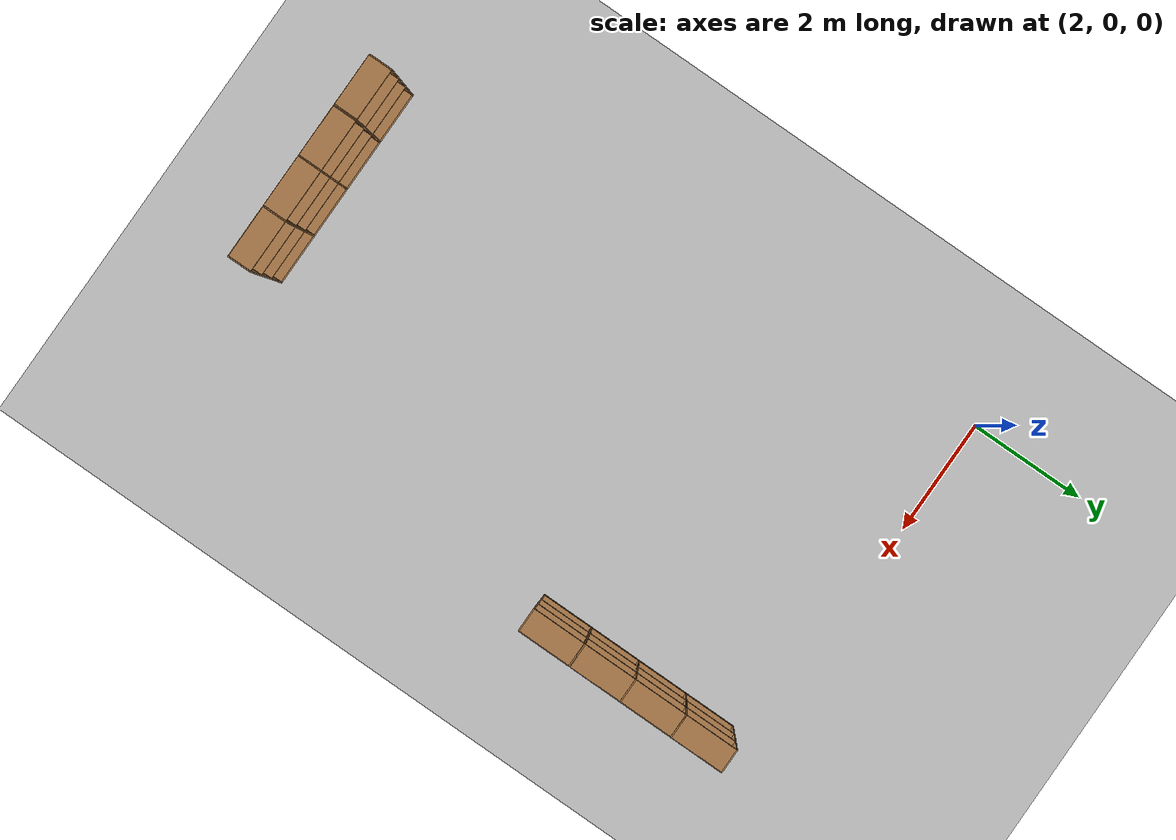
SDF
<sdf version="1.6">
 <world name="default">
  <model name="ground_plane">
   <static>1</static>
   <link name="link">
    <collision name="collision">
     <geometry><plane><normal>0 0 1</normal><size>100 100</size></plane></geometry>
     <surface><friction><ode><mu>100</mu><mu2>50</mu2></ode></friction></surface>
    </collision>
    <visual name="visual">
     <cast_shadows>0</cast_shadows>
     <geometry><plane><normal>0 0 1</normal><size>100 100</size></plane></geometry>
     <material>
      <script><uri>file://media/materials/scripts/gazebo.material</uri><name>Gazebo/Grey</name></script>
     </material>
    </visual>
   </link>
  </model>
  <model name="Bookself-4_clone_0_clone_5_clone_0">
   <model name="Bookself-3">
    <model name="bookshelf_0">
     <static>1</static>
     <link name="link">
      <inertial><mass>1</mass></inertial>
      <collision name="back">
       <pose>0 0.005 0.6 0 -0 0</pose>
       <geometry><box><size>0.9 0.01 1.2</size></box></geometry>
      </collision>
      <visual name="visual1">
       <pose>0 0.005 0.6 0 -0 0</pose>
       <geometry><box><size>0.9 0.01 1.2</size></box></geometry>
       <material>
        <script><uri>file://media/materials/scripts/gazebo.material</uri><name>Gazebo/Wood</name></script>
       </material>
      </visual>
      <collision name="left_side">
       <pose>0.45 -0.195 0.6 0 -0 0</pose>
       <geometry><box><size>0.02 0.4 1.2</size></box></geometry>
      </collision>
      <visual name="visual2">
       <pose>0.45 -0.195 0.6 0 -0 0</pose>
       <geometry><box><size>0.02 0.4 1.2</size></box></geometry>
       <material>
        <script><uri>file://media/materials/scripts/gazebo.material</uri><name>Gazebo/Wood</name></script>
       </material>
      </visual>
      <collision name="right_side">
       <pose>-0.45 -0.195 0.6 0 -0 0</pose>
       <geometry><box><size>0.02 0.4 1.2</size></box></geometry>
      </collision>
      <visual name="visual3">
       <pose>-0.45 -0.195 0.6 0 -0 0</pose>
       <geometry><box><size>0.02 0.4 1.2</size></box></geometry>
       <material>
        <script><uri>file://media/materials/scripts/gazebo.material</uri><name>Gazebo/Wood</name></script>
       </material>
      </visual>
      <collision name="bottom">
       <pose>0 -0.195 0.03 0 -0 0</pose>
       <geometry><box><size>0.88 0.4 0.06</size></box></geometry>
      </collision>
      <visual name="visual4">
       <pose>0 -0.195 0.03 0 -0 0</pose>
       <geometry><box><size>0.88 0.4 0.06</size></box></geometry>
       <material>
        <script><uri>file://media/materials/scripts/gazebo.material</uri><name>Gazebo/Wood</name></script>
       </material>
      </visual>
      <collision name="top">
       <pose>0 -0.195 1.19 0 -0 0</pose>
       <geometry><box><size>0.88 0.4 0.02</size></box></geometry>
      </collision>
      <visual name="visual5">
       <pose>0 -0.195 1.19 0 -0 0</pose>
       <geometry><box><size>0.88 0.4 0.02</size></box></geometry>
       <material>
        <script><uri>file://media/materials/scripts/gazebo.material</uri><name>Gazebo/Wood</name></script>
       </material>
      </visual>
      <collision name="low_shelf">
       <pose>0 -0.195 0.43 0 -0 0</pose>
       <geometry><box><size>0.88 0.4 0.02</size></box></geometry>
      </collision>
      <visual name="visual6">
       <pose>0 -0.195 0.43 0 -0 0</pose>
       <geometry><box><size>0.88 0.4 0.02</size></box></geometry>
       <material>
        <script><uri>file://media/materials/scripts/gazebo.material</uri><name>Gazebo/Wood</name></script>
       </material>
      </visual>
      <collision name="high_shelf">
       <pose>0 -0.195 0.8 0 -0 0</pose>
       <geometry><box><size>0.88 0.4 0.02</size></box></geometry>
      </collision>
      <visual name="visual7">
       <pose>0 -0.195 0.8 0 -0 0</pose>
       <geometry><box><size>0.88 0.4 0.02</size></box></geometry>
       <material>
        <script><uri>file://media/materials/scripts/gazebo.material</uri><name>Gazebo/Wood</name></script>
       </material>
      </visual>
     </link>
     <pose>-0.903039 0 0 0 -0 0</pose>
    </model>
    <model name="bookshelf_1">
     <static>1</static>
     <link name="link">
      <inertial><mass>1</mass></inertial>
      <collision name="back">
       <pose>0 0.005 0.6 0 -0 0</pose>
       <geometry><box><size>0.9 0.01 1.2</size></box></geometry>
      </collision>
      <visual name="visual1">
       <pose>0 0.005 0.6 0 -0 0</pose>
       <geometry><box><size>0.9 0.01 1.2</size></box></geometry>
       <material>
        <script><uri>file://media/materials/scripts/gazebo.material</uri><name>Gazebo/Wood</name></script>
       </material>
      </visual>
      <collision name="left_side">
       <pose>0.45 -0.195 0.6 0 -0 0</pose>
       <geometry><box><size>0.02 0.4 1.2</size></box></geometry>
      </collision>
      <visual name="visual2">
       <pose>0.45 -0.195 0.6 0 -0 0</pose>
       <geometry><box><size>0.02 0.4 1.2</size></box></geometry>
       <material>
        <script><uri>file://media/materials/scripts/gazebo.material</uri><name>Gazebo/Wood</name></script>
       </material>
      </visual>
      <collision name="right_side">
       <pose>-0.45 -0.195 0.6 0 -0 0</pose>
       <geometry><box><size>0.02 0.4 1.2</size></box></geometry>
      </collision>
      <visual name="visual3">
       <pose>-0.45 -0.195 0.6 0 -0 0</pose>
       <geometry><box><size>0.02 0.4 1.2</size></box></geometry>
       <material>
        <script><uri>file://media/materials/scripts/gazebo.material</uri><name>Gazebo/Wood</name></script>
       </material>
      </visual>
      <collision name="bottom">
       <pose>0 -0.195 0.03 0 -0 0</pose>
       <geometry><box><size>0.88 0.4 0.06</size></box></geometry>
      </collision>
      <visual name="visual4">
       <pose>0 -0.195 0.03 0 -0 0</pose>
       <geometry><box><size>0.88 0.4 0.06</size></box></geometry>
       <material>
        <script><uri>file://media/materials/scripts/gazebo.material</uri><name>Gazebo/Wood</name></script>
       </material>
      </visual>
      <collision name="top">
       <pose>0 -0.195 1.19 0 -0 0</pose>
       <geometry><box><size>0.88 0.4 0.02</size></box></geometry>
      </collision>
      <visual name="visual5">
       <pose>0 -0.195 1.19 0 -0 0</pose>
       <geometry><box><size>0.88 0.4 0.02</size></box></geometry>
       <material>
        <script><uri>file://media/materials/scripts/gazebo.material</uri><name>Gazebo/Wood</name></script>
       </material>
      </visual>
      <collision name="low_shelf">
       <pose>0 -0.195 0.43 0 -0 0</pose>
       <geometry><box><size>0.88 0.4 0.02</size></box></geometry>
      </collision>
      <visual name="visual6">
       <pose>0 -0.195 0.43 0 -0 0</pose>
       <geometry><box><size>0.88 0.4 0.02</size></box></geometry>
       <material>
        <script><uri>file://media/materials/scripts/gazebo.material</uri><name>Gazebo/Wood</name></script>
       </material>
      </visual>
      <collision name="high_shelf">
       <pose>0 -0.195 0.8 0 -0 0</pose>
       <geometry><box><size>0.88 0.4 0.02</size></box></geometry>
      </collision>
      <visual name="visual7">
       <pose>0 -0.195 0.8 0 -0 0</pose>
       <geometry><box><size>0.88 0.4 0.02</size></box></geometry>
       <material>
        <script><uri>file://media/materials/scripts/gazebo.material</uri><name>Gazebo/Wood</name></script>
       </material>
      </visual>
     </link>
     <pose>0.000535 0 0 0 -0 0</pose>
    </model>
    <model name="bookshelf_1_clone">
     <static>1</static>
     <link name="link">
      <inertial><mass>1</mass></inertial>
      <collision name="back">
       <pose>0 0.005 0.6 0 -0 0</pose>
       <geometry><box><size>0.9 0.01 1.2</size></box></geometry>
      </collision>
      <visual name="visual1">
       <pose>0 0.005 0.6 0 -0 0</pose>
       <geometry><box><size>0.9 0.01 1.2</size></box></geometry>
       <material>
        <script><uri>file://media/materials/scripts/gazebo.material</uri><name>Gazebo/Wood</name></script>
       </material>
      </visual>
      <collision name="left_side">
       <pose>0.45 -0.195 0.6 0 -0 0</pose>
       <geometry><box><size>0.02 0.4 1.2</size></box></geometry>
      </collision>
      <visual name="visual2">
       <pose>0.45 -0.195 0.6 0 -0 0</pose>
       <geometry><box><size>0.02 0.4 1.2</size></box></geometry>
       <material>
        <script><uri>file://media/materials/scripts/gazebo.material</uri><name>Gazebo/Wood</name></script>
       </material>
      </visual>
      <collision name="right_side">
       <pose>-0.45 -0.195 0.6 0 -0 0</pose>
       <geometry><box><size>0.02 0.4 1.2</size></box></geometry>
      </collision>
      <visual name="visual3">
       <pose>-0.45 -0.195 0.6 0 -0 0</pose>
       <geometry><box><size>0.02 0.4 1.2</size></box></geometry>
       <material>
        <script><uri>file://media/materials/scripts/gazebo.material</uri><name>Gazebo/Wood</name></script>
       </material>
      </visual>
      <collision name="bottom">
       <pose>0 -0.195 0.03 0 -0 0</pose>
       <geometry><box><size>0.88 0.4 0.06</size></box></geometry>
      </collision>
      <visual name="visual4">
       <pose>0 -0.195 0.03 0 -0 0</pose>
       <geometry><box><size>0.88 0.4 0.06</size></box></geometry>
       <material>
        <script><uri>file://media/materials/scripts/gazebo.material</uri><name>Gazebo/Wood</name></script>
       </material>
      </visual>
      <collision name="top">
       <pose>0 -0.195 1.19 0 -0 0</pose>
       <geometry><box><size>0.88 0.4 0.02</size></box></geometry>
      </collision>
      <visual name="visual5">
       <pose>0 -0.195 1.19 0 -0 0</pose>
       <geometry><box><size>0.88 0.4 0.02</size></box></geometry>
       <material>
        <script><uri>file://media/materials/scripts/gazebo.material</uri><name>Gazebo/Wood</name></script>
       </material>
      </visual>
      <collision name="low_shelf">
       <pose>0 -0.195 0.43 0 -0 0</pose>
       <geometry><box><size>0.88 0.4 0.02</size></box></geometry>
      </collision>
      <visual name="visual6">
       <pose>0 -0.195 0.43 0 -0 0</pose>
       <geometry><box><size>0.88 0.4 0.02</size></box></geometry>
       <material>
        <script><uri>file://media/materials/scripts/gazebo.material</uri><name>Gazebo/Wood</name></script>
       </material>
      </visual>
      <collision name="high_shelf">
       <pose>0 -0.195 0.8 0 -0 0</pose>
       <geometry><box><size>0.88 0.4 0.02</size></box></geometry>
      </collision>
      <visual name="visual7">
       <pose>0 -0.195 0.8 0 -0 0</pose>
       <geometry><box><size>0.88 0.4 0.02</size></box></geometry>
       <material>
        <script><uri>file://media/materials/scripts/gazebo.material</uri><name>Gazebo/Wood</name></script>
       </material>
      </visual>
     </link>
     <pose>0.902502 0 0 0 -0 0</pose>
    </model>
    <static>1</static>
    <pose>-0.906894 3e-05 0 0 -0 0</pose>
   </model>
   <model name="bookshelf">
    <static>1</static>
    <link name="link">
     <inertial><mass>1</mass></inertial>
     <collision name="back">
      <pose>0 0.005 0.6 0 -0 0</pose>
      <geometry><box><size>0.9 0.01 1.2</size></box></geometry>
     </collision>
     <visual name="visual1">
      <pose>0 0.005 0.6 0 -0 0</pose>
      <geometry><box><size>0.9 0.01 1.2</size></box></geometry>
      <material>
       <script><uri>file://media/materials/scripts/gazebo.material</uri><name>Gazebo/Wood</name></script>
      </material>
     </visual>
     <collision name="left_side">
      <pose>0.45 -0.195 0.6 0 -0 0</pose>
      <geometry><box><size>0.02 0.4 1.2</size></box></geometry>
     </collision>
     <visual name="visual2">
      <pose>0.45 -0.195 0.6 0 -0 0</pose>
      <geometry><box><size>0.02 0.4 1.2</size></box></geometry>
      <material>
       <script><uri>file://media/materials/scripts/gazebo.material</uri><name>Gazebo/Wood</name></script>
      </material>
     </visual>
     <collision name="right_side">
      <pose>-0.45 -0.195 0.6 0 -0 0</pose>
      <geometry><box><size>0.02 0.4 1.2</size></box></geometry>
     </collision>
     <visual name="visual3">
      <pose>-0.45 -0.195 0.6 0 -0 0</pose>
      <geometry><box><size>0.02 0.4 1.2</size></box></geometry>
      <material>
       <script><uri>file://media/materials/scripts/gazebo.material</uri><name>Gazebo/Wood</name></script>
      </material>
     </visual>
     <collision name="bottom">
      <pose>0 -0.195 0.03 0 -0 0</pose>
      <geometry><box><size>0.88 0.4 0.06</size></box></geometry>
     </collision>
     <visual name="visual4">
      <pose>0 -0.195 0.03 0 -0 0</pose>
      <geometry><box><size>0.88 0.4 0.06</size></box></geometry>
      <material>
       <script><uri>file://media/materials/scripts/gazebo.material</uri><name>Gazebo/Wood</name></script>
      </material>
     </visual>
     <collision name="top">
      <pose>0 -0.195 1.19 0 -0 0</pose>
      <geometry><box><size>0.88 0.4 0.02</size></box></geometry>
     </collision>
     <visual name="visual5">
      <pose>0 -0.195 1.19 0 -0 0</pose>
      <geometry><box><size>0.88 0.4 0.02</size></box></geometry>
      <material>
       <script><uri>file://media/materials/scripts/gazebo.material</uri><name>Gazebo/Wood</name></script>
      </material>
     </visual>
     <collision name="low_shelf">
      <pose>0 -0.195 0.43 0 -0 0</pose>
      <geometry><box><size>0.88 0.4 0.02</size></box></geometry>
     </collision>
     <visual name="visual6">
      <pose>0 -0.195 0.43 0 -0 0</pose>
      <geometry><box><size>0.88 0.4 0.02</size></box></geometry>
      <material>
       <script><uri>file://media/materials/scripts/gazebo.material</uri><name>Gazebo/Wood</name></script>
      </material>
     </visual>
     <collision name="high_shelf">
      <pose>0 -0.195 0.8 0 -0 0</pose>
      <geometry><box><size>0.88 0.4 0.02</size></box></geometry>
     </collision>
     <visual name="visual7">
      <pose>0 -0.195 0.8 0 -0 0</pose>
      <geometry><box><size>0.88 0.4 0.02</size></box></geometry>
      <material>
       <script><uri>file://media/materials/scripts/gazebo.material</uri><name>Gazebo/Wood</name></script>
      </material>
     </visual>
    </link>
    <pose>0.906808 3e-05 0 0 -0 0</pose>
   </model>
   <static>0</static>
   <pose>4.15493 -10.6816 0 0 -0 3.14159</pose>
  </model>
  <model name="Bookself-4_clone_14_clone_3_clone">
   <model name="Bookself-3">
    <model name="bookshelf_0">
     <static>1</static>
     <link name="link">
      <inertial><mass>1</mass></inertial>
      <collision name="back">
       <pose>0 0.005 0.6 0 -0 0</pose>
       <geometry><box><size>0.9 0.01 1.2</size></box></geometry>
      </collision>
      <visual name="visual1">
       <pose>0 0.005 0.6 0 -0 0</pose>
       <geometry><box><size>0.9 0.01 1.2</size></box></geometry>
       <material>
        <script><uri>file://media/materials/scripts/gazebo.material</uri><name>Gazebo/Wood</name></script>
       </material>
      </visual>
      <collision name="left_side">
       <pose>0.45 -0.195 0.6 0 -0 0</pose>
       <geometry><box><size>0.02 0.4 1.2</size></box></geometry>
      </collision>
      <visual name="visual2">
       <pose>0.45 -0.195 0.6 0 -0 0</pose>
       <geometry><box><size>0.02 0.4 1.2</size></box></geometry>
       <material>
        <script><uri>file://media/materials/scripts/gazebo.material</uri><name>Gazebo/Wood</name></script>
       </material>
      </visual>
      <collision name="right_side">
       <pose>-0.45 -0.195 0.6 0 -0 0</pose>
       <geometry><box><size>0.02 0.4 1.2</size></box></geometry>
      </collision>
      <visual name="visual3">
       <pose>-0.45 -0.195 0.6 0 -0 0</pose>
       <geometry><box><size>0.02 0.4 1.2</size></box></geometry>
       <material>
        <script><uri>file://media/materials/scripts/gazebo.material</uri><name>Gazebo/Wood</name></script>
       </material>
      </visual>
      <collision name="bottom">
       <pose>0 -0.195 0.03 0 -0 0</pose>
       <geometry><box><size>0.88 0.4 0.06</size></box></geometry>
      </collision>
      <visual name="visual4">
       <pose>0 -0.195 0.03 0 -0 0</pose>
       <geometry><box><size>0.88 0.4 0.06</size></box></geometry>
       <material>
        <script><uri>file://media/materials/scripts/gazebo.material</uri><name>Gazebo/Wood</name></script>
       </material>
      </visual>
      <collision name="top">
       <pose>0 -0.195 1.19 0 -0 0</pose>
       <geometry><box><size>0.88 0.4 0.02</size></box></geometry>
      </collision>
      <visual name="visual5">
       <pose>0 -0.195 1.19 0 -0 0</pose>
       <geometry><box><size>0.88 0.4 0.02</size></box></geometry>
       <material>
        <script><uri>file://media/materials/scripts/gazebo.material</uri><name>Gazebo/Wood</name></script>
       </material>
      </visual>
      <collision name="low_shelf">
       <pose>0 -0.195 0.43 0 -0 0</pose>
       <geometry><box><size>0.88 0.4 0.02</size></box></geometry>
      </collision>
      <visual name="visual6">
       <pose>0 -0.195 0.43 0 -0 0</pose>
       <geometry><box><size>0.88 0.4 0.02</size></box></geometry>
       <material>
        <script><uri>file://media/materials/scripts/gazebo.material</uri><name>Gazebo/Wood</name></script>
       </material>
      </visual>
      <collision name="high_shelf">
       <pose>0 -0.195 0.8 0 -0 0</pose>
       <geometry><box><size>0.88 0.4 0.02</size></box></geometry>
      </collision>
      <visual name="visual7">
       <pose>0 -0.195 0.8 0 -0 0</pose>
       <geometry><box><size>0.88 0.4 0.02</size></box></geometry>
       <material>
        <script><uri>file://media/materials/scripts/gazebo.material</uri><name>Gazebo/Wood</name></script>
       </material>
      </visual>
     </link>
     <pose>-0.903039 0 0 0 -0 0</pose>
    </model>
    <model name="bookshelf_1">
     <static>1</static>
     <link name="link">
      <inertial><mass>1</mass></inertial>
      <collision name="back">
       <pose>0 0.005 0.6 0 -0 0</pose>
       <geometry><box><size>0.9 0.01 1.2</size></box></geometry>
      </collision>
      <visual name="visual1">
       <pose>0 0.005 0.6 0 -0 0</pose>
       <geometry><box><size>0.9 0.01 1.2</size></box></geometry>
       <material>
        <script><uri>file://media/materials/scripts/gazebo.material</uri><name>Gazebo/Wood</name></script>
       </material>
      </visual>
      <collision name="left_side">
       <pose>0.45 -0.195 0.6 0 -0 0</pose>
       <geometry><box><size>0.02 0.4 1.2</size></box></geometry>
      </collision>
      <visual name="visual2">
       <pose>0.45 -0.195 0.6 0 -0 0</pose>
       <geometry><box><size>0.02 0.4 1.2</size></box></geometry>
       <material>
        <script><uri>file://media/materials/scripts/gazebo.material</uri><name>Gazebo/Wood</name></script>
       </material>
      </visual>
      <collision name="right_side">
       <pose>-0.45 -0.195 0.6 0 -0 0</pose>
       <geometry><box><size>0.02 0.4 1.2</size></box></geometry>
      </collision>
      <visual name="visual3">
       <pose>-0.45 -0.195 0.6 0 -0 0</pose>
       <geometry><box><size>0.02 0.4 1.2</size></box></geometry>
       <material>
        <script><uri>file://media/materials/scripts/gazebo.material</uri><name>Gazebo/Wood</name></script>
       </material>
      </visual>
      <collision name="bottom">
       <pose>0 -0.195 0.03 0 -0 0</pose>
       <geometry><box><size>0.88 0.4 0.06</size></box></geometry>
      </collision>
      <visual name="visual4">
       <pose>0 -0.195 0.03 0 -0 0</pose>
       <geometry><box><size>0.88 0.4 0.06</size></box></geometry>
       <material>
        <script><uri>file://media/materials/scripts/gazebo.material</uri><name>Gazebo/Wood</name></script>
       </material>
      </visual>
      <collision name="top">
       <pose>0 -0.195 1.19 0 -0 0</pose>
       <geometry><box><size>0.88 0.4 0.02</size></box></geometry>
      </collision>
      <visual name="visual5">
       <pose>0 -0.195 1.19 0 -0 0</pose>
       <geometry><box><size>0.88 0.4 0.02</size></box></geometry>
       <material>
        <script><uri>file://media/materials/scripts/gazebo.material</uri><name>Gazebo/Wood</name></script>
       </material>
      </visual>
      <collision name="low_shelf">
       <pose>0 -0.195 0.43 0 -0 0</pose>
       <geometry><box><size>0.88 0.4 0.02</size></box></geometry>
      </collision>
      <visual name="visual6">
       <pose>0 -0.195 0.43 0 -0 0</pose>
       <geometry><box><size>0.88 0.4 0.02</size></box></geometry>
       <material>
        <script><uri>file://media/materials/scripts/gazebo.material</uri><name>Gazebo/Wood</name></script>
       </material>
      </visual>
      <collision name="high_shelf">
       <pose>0 -0.195 0.8 0 -0 0</pose>
       <geometry><box><size>0.88 0.4 0.02</size></box></geometry>
      </collision>
      <visual name="visual7">
       <pose>0 -0.195 0.8 0 -0 0</pose>
       <geometry><box><size>0.88 0.4 0.02</size></box></geometry>
       <material>
        <script><uri>file://media/materials/scripts/gazebo.material</uri><name>Gazebo/Wood</name></script>
       </material>
      </visual>
     </link>
     <pose>0.000535 0 0 0 -0 0</pose>
    </model>
    <model name="bookshelf_1_clone">
     <static>1</static>
     <link name="link">
      <inertial><mass>1</mass></inertial>
      <collision name="back">
       <pose>0 0.005 0.6 0 -0 0</pose>
       <geometry><box><size>0.9 0.01 1.2</size></box></geometry>
      </collision>
      <visual name="visual1">
       <pose>0 0.005 0.6 0 -0 0</pose>
       <geometry><box><size>0.9 0.01 1.2</size></box></geometry>
       <material>
        <script><uri>file://media/materials/scripts/gazebo.material</uri><name>Gazebo/Wood</name></script>
       </material>
      </visual>
      <collision name="left_side">
       <pose>0.45 -0.195 0.6 0 -0 0</pose>
       <geometry><box><size>0.02 0.4 1.2</size></box></geometry>
      </collision>
      <visual name="visual2">
       <pose>0.45 -0.195 0.6 0 -0 0</pose>
       <geometry><box><size>0.02 0.4 1.2</size></box></geometry>
       <material>
        <script><uri>file://media/materials/scripts/gazebo.material</uri><name>Gazebo/Wood</name></script>
       </material>
      </visual>
      <collision name="right_side">
       <pose>-0.45 -0.195 0.6 0 -0 0</pose>
       <geometry><box><size>0.02 0.4 1.2</size></box></geometry>
      </collision>
      <visual name="visual3">
       <pose>-0.45 -0.195 0.6 0 -0 0</pose>
       <geometry><box><size>0.02 0.4 1.2</size></box></geometry>
       <material>
        <script><uri>file://media/materials/scripts/gazebo.material</uri><name>Gazebo/Wood</name></script>
       </material>
      </visual>
      <collision name="bottom">
       <pose>0 -0.195 0.03 0 -0 0</pose>
       <geometry><box><size>0.88 0.4 0.06</size></box></geometry>
      </collision>
      <visual name="visual4">
       <pose>0 -0.195 0.03 0 -0 0</pose>
       <geometry><box><size>0.88 0.4 0.06</size></box></geometry>
       <material>
        <script><uri>file://media/materials/scripts/gazebo.material</uri><name>Gazebo/Wood</name></script>
       </material>
      </visual>
      <collision name="top">
       <pose>0 -0.195 1.19 0 -0 0</pose>
       <geometry><box><size>0.88 0.4 0.02</size></box></geometry>
      </collision>
      <visual name="visual5">
       <pose>0 -0.195 1.19 0 -0 0</pose>
       <geometry><box><size>0.88 0.4 0.02</size></box></geometry>
       <material>
        <script><uri>file://media/materials/scripts/gazebo.material</uri><name>Gazebo/Wood</name></script>
       </material>
      </visual>
      <collision name="low_shelf">
       <pose>0 -0.195 0.43 0 -0 0</pose>
       <geometry><box><size>0.88 0.4 0.02</size></box></geometry>
      </collision>
      <visual name="visual6">
       <pose>0 -0.195 0.43 0 -0 0</pose>
       <geometry><box><size>0.88 0.4 0.02</size></box></geometry>
       <material>
        <script><uri>file://media/materials/scripts/gazebo.material</uri><name>Gazebo/Wood</name></script>
       </material>
      </visual>
      <collision name="high_shelf">
       <pose>0 -0.195 0.8 0 -0 0</pose>
       <geometry><box><size>0.88 0.4 0.02</size></box></geometry>
      </collision>
      <visual name="visual7">
       <pose>0 -0.195 0.8 0 -0 0</pose>
       <geometry><box><size>0.88 0.4 0.02</size></box></geometry>
       <material>
        <script><uri>file://media/materials/scripts/gazebo.material</uri><name>Gazebo/Wood</name></script>
       </material>
      </visual>
     </link>
     <pose>0.902502 0 0 0 -0 0</pose>
    </model>
    <static>1</static>
    <pose>-0.906894 3e-05 0 0 -0 0</pose>
   </model>
   <model name="bookshelf">
    <static>1</static>
    <link name="link">
     <inertial><mass>1</mass></inertial>
     <collision name="back">
      <pose>0 0.005 0.6 0 -0 0</pose>
      <geometry><box><size>0.9 0.01 1.2</size></box></geometry>
     </collision>
     <visual name="visual1">
      <pose>0 0.005 0.6 0 -0 0</pose>
      <geometry><box><size>0.9 0.01 1.2</size></box></geometry>
      <material>
       <script><uri>file://media/materials/scripts/gazebo.material</uri><name>Gazebo/Wood</name></script>
      </material>
     </visual>
     <collision name="left_side">
      <pose>0.45 -0.195 0.6 0 -0 0</pose>
      <geometry><box><size>0.02 0.4 1.2</size></box></geometry>
     </collision>
     <visual name="visual2">
      <pose>0.45 -0.195 0.6 0 -0 0</pose>
      <geometry><box><size>0.02 0.4 1.2</size></box></geometry>
      <material>
       <script><uri>file://media/materials/scripts/gazebo.material</uri><name>Gazebo/Wood</name></script>
      </material>
     </visual>
     <collision name="right_side">
      <pose>-0.45 -0.195 0.6 0 -0 0</pose>
      <geometry><box><size>0.02 0.4 1.2</size></box></geometry>
     </collision>
     <visual name="visual3">
      <pose>-0.45 -0.195 0.6 0 -0 0</pose>
      <geometry><box><size>0.02 0.4 1.2</size></box></geometry>
      <material>
       <script><uri>file://media/materials/scripts/gazebo.material</uri><name>Gazebo/Wood</name></script>
      </material>
     </visual>
     <collision name="bottom">
      <pose>0 -0.195 0.03 0 -0 0</pose>
      <geometry><box><size>0.88 0.4 0.06</size></box></geometry>
     </collision>
     <visual name="visual4">
      <pose>0 -0.195 0.03 0 -0 0</pose>
      <geometry><box><size>0.88 0.4 0.06</size></box></geometry>
      <material>
       <script><uri>file://media/materials/scripts/gazebo.material</uri><name>Gazebo/Wood</name></script>
      </material>
     </visual>
     <collision name="top">
      <pose>0 -0.195 1.19 0 -0 0</pose>
      <geometry><box><size>0.88 0.4 0.02</size></box></geometry>
     </collision>
     <visual name="visual5">
      <pose>0 -0.195 1.19 0 -0 0</pose>
      <geometry><box><size>0.88 0.4 0.02</size></box></geometry>
      <material>
       <script><uri>file://media/materials/scripts/gazebo.material</uri><name>Gazebo/Wood</name></script>
      </material>
     </visual>
     <collision name="low_shelf">
      <pose>0 -0.195 0.43 0 -0 0</pose>
      <geometry><box><size>0.88 0.4 0.02</size></box></geometry>
     </collision>
     <visual name="visual6">
      <pose>0 -0.195 0.43 0 -0 0</pose>
      <geometry><box><size>0.88 0.4 0.02</size></box></geometry>
      <material>
       <script><uri>file://media/materials/scripts/gazebo.material</uri><name>Gazebo/Wood</name></script>
      </material>
     </visual>
     <collision name="high_shelf">
      <pose>0 -0.195 0.8 0 -0 0</pose>
      <geometry><box><size>0.88 0.4 0.02</size></box></geometry>
     </collision>
     <visual name="visual7">
      <pose>0 -0.195 0.8 0 -0 0</pose>
      <geometry><box><size>0.88 0.4 0.02</size></box></geometry>
      <material>
       <script><uri>file://media/materials/scripts/gazebo.material</uri><name>Gazebo/Wood</name></script>
      </material>
     </visual>
    </link>
    <pose>0.906808 3e-05 0 0 -0 0</pose>
   </model>
   <static>0</static>
   <pose>8.47491 -2.69489 0 0 0 -1.5707</pose>
  </model>
 </world>
</sdf>
